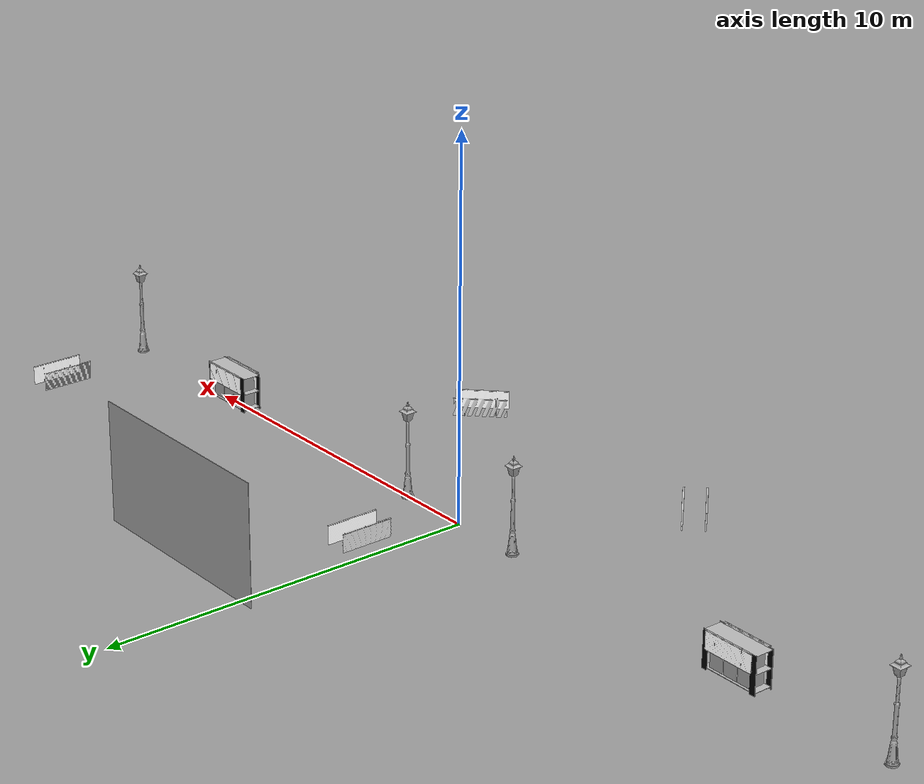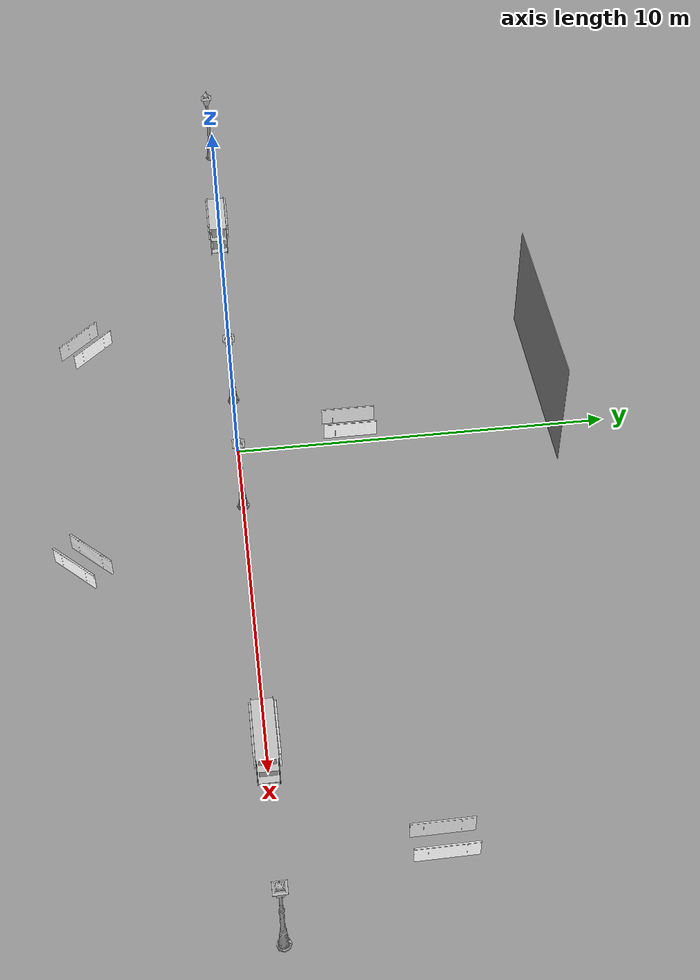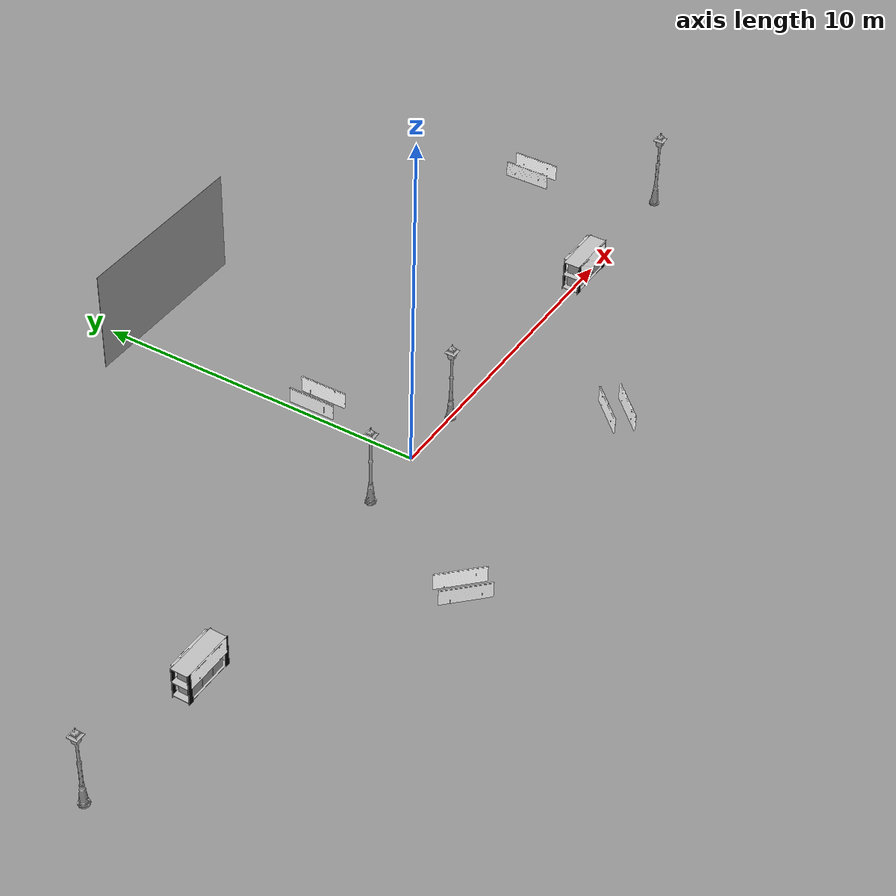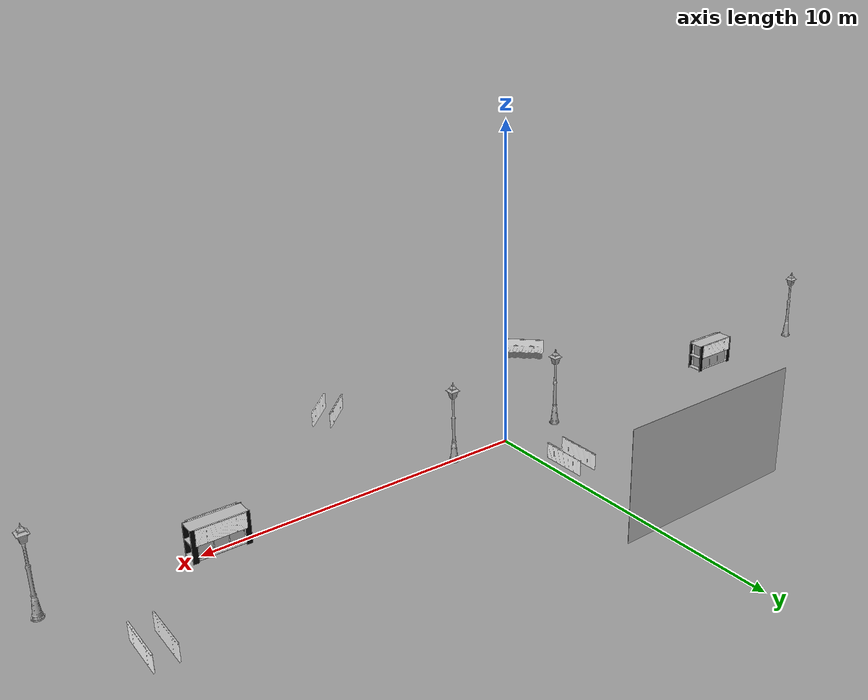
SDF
<sdf version="1.10">
 <world name="default">
  <physics type="ode">
   <max_step_size>0.0040000000000000001</max_step_size>
   <real_time_factor>1</real_time_factor>
   <real_time_update_rate>250</real_time_update_rate>
  </physics>
  <plugin name="gz::sim::systems::Physics" filename="gz-sim-physics-system"/>
  <plugin name="gz::sim::systems::UserCommands" filename="gz-sim-user-commands-system"/>
  <plugin name="gz::sim::systems::SceneBroadcaster" filename="gz-sim-scene-broadcaster-system"/>
  <plugin name="gz::sim::systems::Contact" filename="gz-sim-contact-system"/>
  <plugin name="gz::sim::systems::Imu" filename="gz-sim-imu-system"/>
  <plugin name="gz::sim::systems::Magnetometer" filename="gz-sim-magnetometer-system"/>
  <plugin name="gz::sim::systems::Altimeter" filename="gz-sim-altimeter-system"/>
  <plugin name="gz::sim::systems::NavSat" filename="gz-sim-navsat-system"/>
  <plugin name="gz::sim::systems::Sensors" filename="gz-sim-sensors-system">
   <render_engine>ogre2</render_engine>
  </plugin>
  <gravity>0 0 -9.8000000000000007</gravity>
  <magnetic_field>6.0000000000000002e-06 2.3e-05 -4.1999999999999998e-05</magnetic_field>
  <atmosphere type="adiabatic"/>
  <spherical_coordinates>
   <surface_model>EARTH_WGS84</surface_model>
   <latitude_deg>39.79480109851339</latitude_deg>
   <longitude_deg>-84.08631702793322</longitude_deg>
   <elevation>265.2</elevation>
   <heading_deg>0</heading_deg>
  </spherical_coordinates>
  <scene><grid>false</grid></scene>
  <light name="light_1" type="point">
   <pose>-5.5 -5.5 2 0 0 0</pose>
   <diffuse>1 1 1 1</diffuse>
   <specular>0.3 0.3 0.3 1</specular>
   <attenuation><range>6</range><constant>0</constant><linear>0</linear><quadratic>0</quadratic></attenuation>
   <cast_shadows>false</cast_shadows>
   <intensity>1.0</intensity>
  </light>
  <light name="light_2" type="point">
   <pose>5.5 -5.5 2 0 0 0</pose>
   <diffuse>1 1 1 1</diffuse>
   <specular>0.3 0.3 0.3 1</specular>
   <attenuation><range>6</range><constant>0</constant><linear>0</linear><quadratic>0</quadratic></attenuation>
   <cast_shadows>false</cast_shadows>
   <intensity>1.0</intensity>
  </light>
  <light name="light_3" type="point">
   <pose>-5.5 5.5 2 0 0 0</pose>
   <diffuse>1 1 1 1</diffuse>
   <specular>0.3 0.3 0.3 1</specular>
   <attenuation><range>6</range><constant>0</constant><linear>0</linear><quadratic>0</quadratic></attenuation>
   <cast_shadows>false</cast_shadows>
   <intensity>1.0</intensity>
  </light>
  <light name="light_4" type="point">
   <pose>5.5 5.5 2 0 0 0</pose>
   <diffuse>1 1 1 1</diffuse>
   <specular>0.3 0.3 0.3 1</specular>
   <attenuation><range>6</range><constant>0</constant><linear>0</linear><quadratic>0</quadratic></attenuation>
   <cast_shadows>false</cast_shadows>
   <intensity>1.0</intensity>
  </light>
  <light name="light_mid_1" type="point">
   <pose>0 5.5 2 0 0 0</pose>
   <diffuse>1 1 1 1</diffuse>
   <specular>0.3 0.3 0.3 1</specular>
   <attenuation><range>6</range><constant>0</constant><linear>0</linear><quadratic>0</quadratic></attenuation>
   <cast_shadows>false</cast_shadows>
   <intensity>1.0</intensity>
  </light>
  <light name="light_mid_2" type="point">
   <pose>0 -5.5 2 0 0 0</pose>
   <diffuse>1 1 1 1</diffuse>
   <specular>0.3 0.3 0.3 1</specular>
   <attenuation><range>6</range><constant>0</constant><linear>0</linear><quadratic>0</quadratic></attenuation>
   <cast_shadows>false</cast_shadows>
   <intensity>1.0</intensity>
  </light>
  <light name="light_5" type="point">
   <pose>-14 0 2 0 0 0</pose>
   <diffuse>1 1 1 1</diffuse>
   <specular>0.3 0.3 0.3 1</specular>
   <attenuation><range>6</range><constant>0</constant><linear>0</linear><quadratic>0</quadratic></attenuation>
   <cast_shadows>false</cast_shadows>
   <intensity>1.0</intensity>
  </light>
  <light name="light_6" type="point">
   <pose>14 0 2 0 0 0</pose>
   <diffuse>1 1 1 1</diffuse>
   <specular>0.3 0.3 0.3 1</specular>
   <attenuation><range>6</range><constant>0</constant><linear>0</linear><quadratic>0</quadratic></attenuation>
   <cast_shadows>false</cast_shadows>
   <intensity>1.0</intensity>
  </light>
  <light name="light_7" type="point">
   <pose>-12.5 -5 2 0 0 0</pose>
   <diffuse>1 1 1 1</diffuse>
   <specular>0.3 0.3 0.3 1</specular>
   <attenuation><range>6</range><constant>0</constant><linear>0</linear><quadratic>0</quadratic></attenuation>
   <cast_shadows>false</cast_shadows>
   <intensity>1.0</intensity>
  </light>
  <light name="light_8" type="point">
   <pose>-12.5 5 2 0 0 0</pose>
   <diffuse>1 1 1 1</diffuse>
   <specular>0.3 0.3 0.3 1</specular>
   <attenuation><range>6</range><constant>0</constant><linear>0</linear><quadratic>0</quadratic></attenuation>
   <cast_shadows>false</cast_shadows>
   <intensity>1.0</intensity>
  </light>
  <light name="light_9" type="point">
   <pose>12.5 -5 2 0 0 0</pose>
   <diffuse>1 1 1 1</diffuse>
   <specular>0.3 0.3 0.3 1</specular>
   <attenuation><range>6</range><constant>0</constant><linear>0</linear><quadratic>0</quadratic></attenuation>
   <cast_shadows>false</cast_shadows>
   <intensity>1.0</intensity>
  </light>
  <light name="light_10" type="point">
   <pose>12.5 5 2 0 0 0</pose>
   <diffuse>1 1 1 1</diffuse>
   <specular>0.3 0.3 0.3 1</specular>
   <attenuation><range>6</range><constant>0</constant><linear>0</linear><quadratic>0</quadratic></attenuation>
   <cast_shadows>false</cast_shadows>
   <intensity>1.0</intensity>
  </light>
  <light name="light_11" type="point">
   <pose>-14 -3.5 2 0 0 0</pose>
   <diffuse>1 1 1 1</diffuse>
   <specular>0.3 0.3 0.3 1</specular>
   <attenuation><range>6</range><constant>0</constant><linear>0</linear><quadratic>0</quadratic></attenuation>
   <cast_shadows>false</cast_shadows>
   <intensity>1.0</intensity>
  </light>
  <light name="light_12" type="point">
   <pose>-14 3.5 2 0 0 0</pose>
   <diffuse>1 1 1 1</diffuse>
   <specular>0.3 0.3 0.3 1</specular>
   <attenuation><range>6</range><constant>0</constant><linear>0</linear><quadratic>0</quadratic></attenuation>
   <cast_shadows>false</cast_shadows>
   <intensity>1.0</intensity>
  </light>
  <light name="light_13" type="point">
   <pose>14 -3.5 2 0 0 0</pose>
   <diffuse>1 1 1 1</diffuse>
   <specular>0.3 0.3 0.3 1</specular>
   <attenuation><range>6</range><constant>0</constant><linear>0</linear><quadratic>0</quadratic></attenuation>
   <cast_shadows>false</cast_shadows>
   <intensity>1.0</intensity>
  </light>
  <light name="light_14" type="point">
   <pose>14 3.5 2 0 0 0</pose>
   <diffuse>1 1 1 1</diffuse>
   <specular>0.3 0.3 0.3 1</specular>
   <attenuation><range>6</range><constant>0</constant><linear>0</linear><quadratic>0</quadratic></attenuation>
   <cast_shadows>false</cast_shadows>
   <intensity>1.0</intensity>
  </light>
  <light name="light_15" type="point">
   <pose>9.5 -1.0 1 0 0 0</pose>
   <diffuse>1 1 1 1</diffuse>
   <specular>0.3 0.3 0.3 1</specular>
   <attenuation><range>2.5</range><constant>0</constant><linear>0</linear><quadratic>0</quadratic></attenuation>
   <cast_shadows>false</cast_shadows>
   <intensity>1.0</intensity>
  </light>
  <light name="light_16" type="point">
   <pose>9.5 1.0 1 0 0 0</pose>
   <diffuse>1 1 1 1</diffuse>
   <specular>0.3 0.3 0.3 1</specular>
   <attenuation><range>2.5</range><constant>0</constant><linear>0</linear><quadratic>0</quadratic></attenuation>
   <cast_shadows>false</cast_shadows>
   <intensity>1.0</intensity>
  </light>
  <light name="light_17" type="point">
   <pose>-9.5 -1.0 1 0 0 0</pose>
   <diffuse>1 1 1 1</diffuse>
   <specular>0.3 0.3 0.3 1</specular>
   <attenuation><range>2.5</range><constant>0</constant><linear>0</linear><quadratic>0</quadratic></attenuation>
   <cast_shadows>false</cast_shadows>
   <intensity>1.0</intensity>
  </light>
  <light name="light_18" type="point">
   <pose>-9.5 1.0 1 0 0 0</pose>
   <diffuse>1 1 1 1</diffuse>
   <specular>0.3 0.3 0.3 1</specular>
   <attenuation><range>2.5</range><constant>0</constant><linear>0</linear><quadratic>0</quadratic></attenuation>
   <cast_shadows>false</cast_shadows>
   <intensity>1.0</intensity>
  </light>
  <model name="street_1">
   <static>true</static>
   <link name="main">
    <collision name="collision">
     <pose>2 0 0 0 0 0</pose>
     <geometry><mesh><scale>0.75 0.75 0.75</scale><uri>street.dae</uri></mesh></geometry>
    </collision>
    <visual name="objects">
     <pose>2 0 0 0 0 0</pose>
     <geometry><mesh><scale>0.75 0.75 0.75</scale><uri>street.dae</uri></mesh></geometry>
    </visual>
   </link>
  </model>
  <model name="street_2">
   <static>true</static>
   <link name="main">
    <collision name="collision">
     <pose>-2 0 0 0 0 0</pose>
     <geometry><mesh><scale>0.75 0.75 0.75</scale><uri>street.dae</uri></mesh></geometry>
    </collision>
    <visual name="objects">
     <pose>-2 0 0 0 0 0</pose>
     <geometry><mesh><scale>0.75 0.75 0.75</scale><uri>street.dae</uri></mesh></geometry>
    </visual>
   </link>
  </model>
  <model name="street_end_1">
   <static>true</static>
   <link name="main">
    <collision name="collision">
     <pose>-14 0 0 0 0 0</pose>
     <geometry><mesh><scale>0.75 0.75 0.75</scale><uri>street.dae</uri></mesh></geometry>
    </collision>
    <visual name="objects">
     <pose>-14 0 0 0 0 0</pose>
     <geometry><mesh><scale>0.75 0.75 0.75</scale><uri>street.dae</uri></mesh></geometry>
    </visual>
   </link>
  </model>
  <model name="street_end_2">
   <static>true</static>
   <link name="main">
    <collision name="collision">
     <pose>14 0 0 0 0 0</pose>
     <geometry><mesh><scale>0.75 0.75 0.75</scale><uri>street.dae</uri></mesh></geometry>
    </collision>
    <visual name="objects">
     <pose>14 0 0 0 0 0</pose>
     <geometry><mesh><scale>0.75 0.75 0.75</scale><uri>street.dae</uri></mesh></geometry>
    </visual>
   </link>
  </model>
  <model name="curtain_1">
   <static>true</static>
   <link name="main">
    <visual name="objects">
     <pose>-4 -4 0 0 0 0.78539816339</pose>
     <geometry><mesh><uri>curtain.dae</uri></mesh></geometry>
    </visual>
   </link>
  </model>
  <model name="curtain_3">
   <static>true</static>
   <link name="main">
    <visual name="objects">
     <pose>4 -4 0 0 0 -0.78539816339</pose>
     <geometry><mesh><uri>curtain.dae</uri></mesh></geometry>
    </visual>
   </link>
  </model>
  <model name="curtain_8">
   <static>true</static>
   <link name="main">
    <visual name="objects">
     <pose>0 3.0 0 0 0 0</pose>
     <geometry><mesh><uri>curtain.dae</uri></mesh></geometry>
    </visual>
   </link>
  </model>
  <model name="curtain_6">
   <static>true</static>
   <link name="main">
    <visual name="objects">
     <pose>12.5 3.5 0 0 0 0</pose>
     <geometry><mesh><uri>curtain.dae</uri></mesh></geometry>
    </visual>
   </link>
  </model>
  <model name="rack_three_diverse_11">
   <static>true</static>
   <link name="main">
    <collision name="collision">
     <pose>-9.5 0 0 0 0 1.57079632679</pose>
     <geometry><mesh><uri>rack_three_diverse_11.dae</uri></mesh></geometry>
    </collision>
    <visual name="objects">
     <pose>-9.5 0 0 0 0 1.57079632679</pose>
     <geometry><mesh><uri>rack_three_diverse_11.dae</uri></mesh></geometry>
    </visual>
   </link>
  </model>
  <model name="curtain_11">
   <static>true</static>
   <link name="main">
    <visual name="objects">
     <pose>-9.5 0 0 0 0 1.57079632679</pose>
     <geometry><mesh><uri>curtain.dae</uri></mesh></geometry>
    </visual>
   </link>
  </model>
  <model name="rack_three_diverse_12">
   <static>true</static>
   <link name="main">
    <collision name="collision">
     <pose>9.5 0 0 0 0 1.57079632679</pose>
     <geometry><mesh><uri>rack_three_diverse_12.dae</uri></mesh></geometry>
    </collision>
    <visual name="objects">
     <pose>9.5 0 0 0 0 1.57079632679</pose>
     <geometry><mesh><uri>rack_three_diverse_12.dae</uri></mesh></geometry>
    </visual>
   </link>
  </model>
  <model name="curtain_12">
   <static>true</static>
   <link name="main">
    <visual name="objects">
     <pose>9.5 0 0 0 0 1.57079632679</pose>
     <geometry><mesh><uri>curtain.dae</uri></mesh></geometry>
    </visual>
   </link>
  </model>
  <model name="nxp">
   <static>true</static>
   <link name="main">
    <visual name="objects">
     <pose>0 8.0 3 0 0 -1.57079632679</pose>
     <geometry><mesh><scale>5 5 5</scale><uri>nxp.dae</uri></mesh></geometry>
    </visual>
   </link>
   <joint name="world_joint" type="fixed"><parent>world</parent><child>main</child></joint>
  </model>
 </world>
</sdf>
